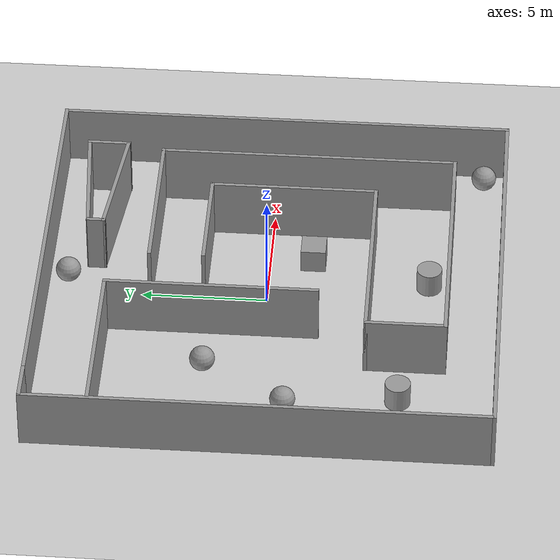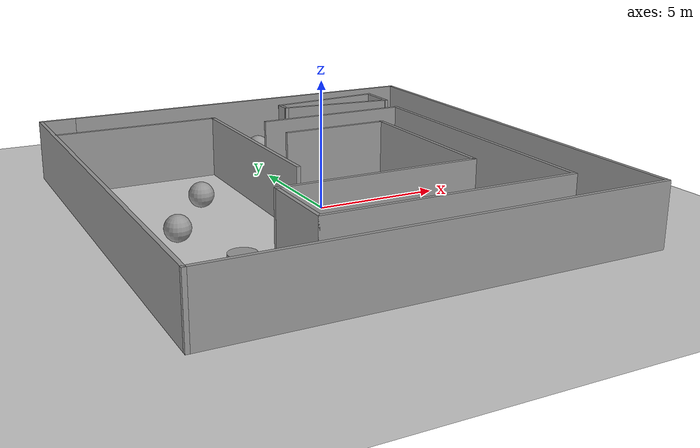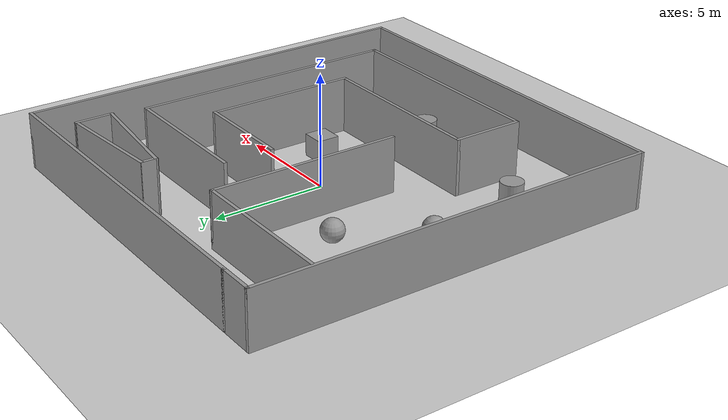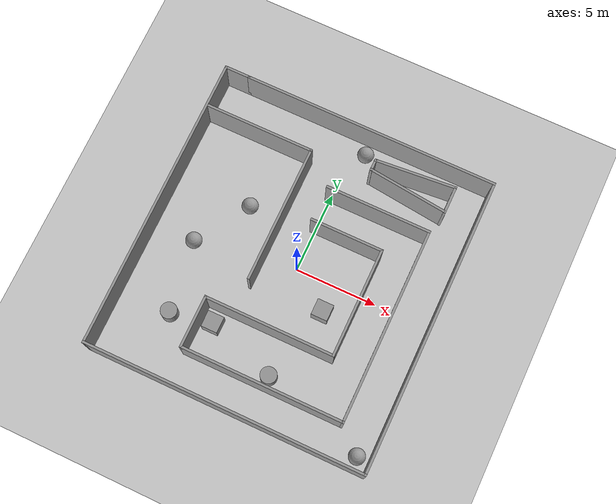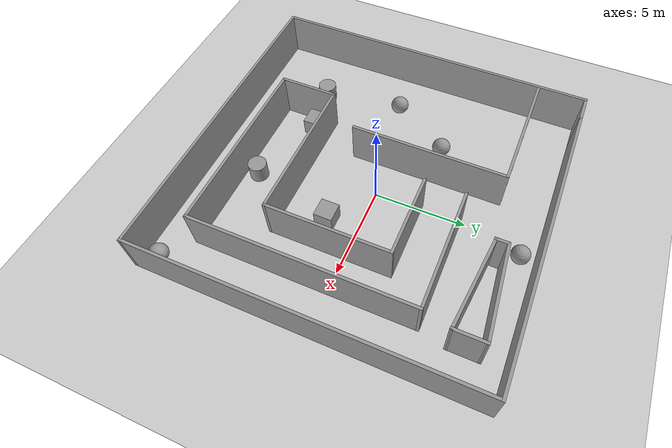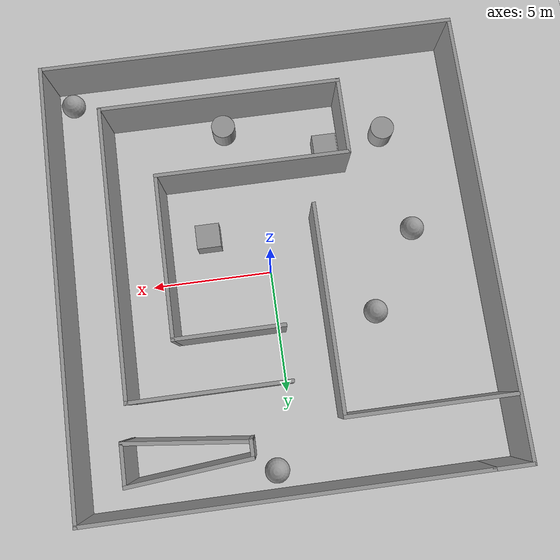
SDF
<sdf version="1.7">
 <world name="default">
  <light name="sun" type="directional">
   <pose>0 0 10 0 -0 0</pose>
   <diffuse>0.8 0.8 0.8 1</diffuse>
   <specular>0.2 0.2 0.2 1</specular>
   <attenuation>
    <range>1000</range>
    <constant>0.9</constant>
    <linear>0.01</linear>
    <quadratic>0.001</quadratic>
   </attenuation>
   <direction>-0.5 0.1 -0.9</direction>
   <spot><inner_angle>0</inner_angle><outer_angle>0</outer_angle><falloff>0</falloff></spot>
  </light>
  <model name="ground_plane">
   <static>1</static>
   <link name="link">
    <collision name="collision">
     <geometry><plane><normal>0 0 1</normal><size>100 100</size></plane></geometry>
     <surface>
      <contact><collide_bitmask>65535</collide_bitmask></contact>
      <friction><ode><mu>100</mu><mu2>50</mu2></ode></friction>
     </surface>
    </collision>
    <visual name="visual">
     <cast_shadows>0</cast_shadows>
     <geometry><plane><normal>0 0 1</normal><size>100 100</size></plane></geometry>
     <material>
      <script><uri>file://media/materials/scripts/gazebo.material</uri><name>Gazebo/Grey</name></script>
     </material>
    </visual>
   </link>
  </model>
  <gravity>0 0 -9.8</gravity>
  <magnetic_field>6e-06 2.3e-05 -4.2e-05</magnetic_field>
  <atmosphere type="adiabatic"/>
  <physics type="ode">
   <max_step_size>0.001</max_step_size>
   <real_time_factor>1</real_time_factor>
   <real_time_update_rate>1000</real_time_update_rate>
  </physics>
  <scene><ambient>0.4 0.4 0.4 1</ambient><background>0.7 0.7 0.7 1</background><shadows>1</shadows></scene>
  <audio><device>default</device></audio>
  <spherical_coordinates>
   <surface_model>EARTH_WGS84</surface_model>
   <latitude_deg>0</latitude_deg>
   <longitude_deg>0</longitude_deg>
   <elevation>0</elevation>
   <heading_deg>0</heading_deg>
  </spherical_coordinates>
  <model name="custom_world">
   <pose>-0.171794 -0.201702 0 0 -0 0</pose>
   <link name="Wall_11">
    <collision name="Wall_11_Collision">
     <geometry><box><size>6.75 0.15 2.5</size></box></geometry>
     <pose>0 0 1.25 0 -0 0</pose>
    </collision>
    <visual name="Wall_11_Visual">
     <pose>0 0 1.25 0 -0 0</pose>
     <geometry><box><size>6.75 0.15 2.5</size></box></geometry>
     <material>
      <script><uri>file://media/materials/scripts/gazebo.material</uri><name>Gazebo/Grey</name></script>
      <ambient>1 1 1 1</ambient>
     </material>
     <meta><layer>0</layer></meta>
    </visual>
    <pose>-5.1333 6.44614 0 0 -0 0</pose>
   </link>
   <link name="Wall_12">
    <collision name="Wall_12_Collision">
     <geometry><box><size>8.5 0.15 2.5</size></box></geometry>
     <pose>0 0 1.25 0 -0 0</pose>
    </collision>
    <visual name="Wall_12_Visual">
     <pose>0 0 1.25 0 -0 0</pose>
     <geometry><box><size>8.5 0.15 2.5</size></box></geometry>
     <material>
      <script><uri>file://media/materials/scripts/gazebo.material</uri><name>Gazebo/Grey</name></script>
      <ambient>1 1 1 1</ambient>
     </material>
     <meta><layer>0</layer></meta>
    </visual>
    <pose>-1.8333 2.27114 0 0 -0 -1.5708</pose>
   </link>
   <link name="Wall_14">
    <collision name="Wall_14_Collision">
     <geometry><box><size>4.5 0.15 2.5</size></box></geometry>
     <pose>0 0 1.25 0 -0 0</pose>
    </collision>
    <visual name="Wall_14_Visual">
     <pose>0 0 1.25 0 -0 0</pose>
     <geometry><box><size>4.5 0.15 2.5</size></box></geometry>
     <material>
      <script><uri>file://media/materials/scripts/gazebo.material</uri><name>Gazebo/Grey</name></script>
      <ambient>1 1 1 1</ambient>
     </material>
     <meta><layer>0</layer></meta>
    </visual>
    <pose>2.12287 2.70309 0 0 -0 0</pose>
   </link>
   <link name="Wall_15">
    <collision name="Wall_15_Collision">
     <geometry><box><size>6.75 0.15 2.5</size></box></geometry>
     <pose>0 0 1.25 0 -0 0</pose>
    </collision>
    <visual name="Wall_15_Visual">
     <pose>0 0 1.25 0 -0 0</pose>
     <geometry><box><size>6.75 0.15 2.5</size></box></geometry>
     <material>
      <script><uri>file://media/materials/scripts/gazebo.material</uri><name>Gazebo/Grey</name></script>
      <ambient>1 1 1 1</ambient>
     </material>
     <meta><layer>0</layer></meta>
    </visual>
    <pose>4.29787 -0.596908 0 0 -0 -1.5708</pose>
   </link>
   <link name="Wall_16">
    <collision name="Wall_16_Collision">
     <geometry><box><size>8 0.15 2.5</size></box></geometry>
     <pose>0 0 1.25 0 -0 0</pose>
    </collision>
    <visual name="Wall_16_Visual">
     <pose>0 0 1.25 0 -0 0</pose>
     <geometry><box><size>8 0.15 2.5</size></box></geometry>
     <material>
      <script><uri>file://media/materials/scripts/gazebo.material</uri><name>Gazebo/Grey</name></script>
      <ambient>1 1 1 1</ambient>
     </material>
     <meta><layer>0</layer></meta>
    </visual>
    <pose>0.372873 -3.89691 0 0 -0 3.14159</pose>
   </link>
   <link name="Wall_22">
    <collision name="Wall_22_Collision">
     <geometry><box><size>3.25 0.15 2.5</size></box></geometry>
     <pose>0 0 1.25 0 -0 0</pose>
    </collision>
    <visual name="Wall_22_Visual">
     <pose>0 0 1.25 0 -0 0</pose>
     <geometry><box><size>3.25 0.15 2.5</size></box></geometry>
     <material>
      <script><uri>file://media/materials/scripts/gazebo.material</uri><name>Gazebo/Grey</name></script>
      <ambient>1 1 1 1</ambient>
     </material>
     <meta><layer>0</layer></meta>
    </visual>
    <pose>-3.55213 -5.44691 0 0 -0 -1.5708</pose>
   </link>
   <link name="Wall_23">
    <collision name="Wall_23_Collision">
     <geometry><box><size>10 0.15 2.5</size></box></geometry>
     <pose>0 0 1.25 0 -0 0</pose>
    </collision>
    <visual name="Wall_23_Visual">
     <pose>0 0 1.25 0 -0 0</pose>
     <geometry><box><size>10 0.15 2.5</size></box></geometry>
     <material>
      <script><uri>file://media/materials/scripts/gazebo.material</uri><name>Gazebo/Grey</name></script>
      <ambient>1 1 1 1</ambient>
     </material>
     <meta><layer>0</layer></meta>
    </visual>
    <pose>1.37287 -6.99691 0 0 -0 0</pose>
   </link>
   <link name="Wall_24">
    <collision name="Wall_24_Collision">
     <geometry><box><size>12 0.15 2.5</size></box></geometry>
     <pose>0 0 1.25 0 -0 0</pose>
    </collision>
    <visual name="Wall_24_Visual">
     <pose>0 0 1.25 0 -0 0</pose>
     <geometry><box><size>12 0.15 2.5</size></box></geometry>
     <material>
      <script><uri>file://media/materials/scripts/gazebo.material</uri><name>Gazebo/Grey</name></script>
      <ambient>1 1 1 1</ambient>
     </material>
     <meta><layer>0</layer></meta>
    </visual>
    <pose>6.29787 -1.07191 0 0 -0 1.5708</pose>
   </link>
   <link name="Wall_25">
    <collision name="Wall_25_Collision">
     <geometry><box><size>6.5 0.15 2.5</size></box></geometry>
     <pose>0 0 1.25 0 -0 0</pose>
    </collision>
    <visual name="Wall_25_Visual">
     <pose>0 0 1.25 0 -0 0</pose>
     <geometry><box><size>6.5 0.15 2.5</size></box></geometry>
     <material>
      <script><uri>file://media/materials/scripts/gazebo.material</uri><name>Gazebo/Grey</name></script>
      <ambient>1 1 1 1</ambient>
     </material>
     <meta><layer>0</layer></meta>
    </visual>
    <pose>3.12287 4.85309 0 0 -0 3.14159</pose>
   </link>
   <link name="Wall_27">
    <collision name="Wall_27_Collision">
     <geometry><box><size>0.75 0.15 2.5</size></box></geometry>
     <pose>0 0 1.25 0 -0 0</pose>
    </collision>
    <visual name="Wall_27_Visual">
     <pose>0 0 1.25 0 -0 0</pose>
     <geometry><box><size>0.75 0.15 2.5</size></box></geometry>
     <material>
      <script><uri>file://media/materials/scripts/gazebo.material</uri><name>Gazebo/Grey</name></script>
      <ambient>1 1 1 1</ambient>
     </material>
     <meta><layer>0</layer></meta>
    </visual>
    <pose>1.7911 7.14357 0 0 -0 -1.5708</pose>
   </link>
   <link name="Wall_28">
    <collision name="Wall_28_Collision">
     <geometry><box><size>5.00908 0.15 2.5</size></box></geometry>
     <pose>0 0 1.25 0 -0 0</pose>
    </collision>
    <visual name="Wall_28_Visual">
     <pose>0 0 1.25 0 -0 0</pose>
     <geometry><box><size>5.00908 0.15 2.5</size></box></geometry>
     <material>
      <script><uri>file://media/materials/scripts/gazebo.material</uri><name>Gazebo/Grey</name></script>
      <ambient>1 1 1 1</ambient>
     </material>
     <meta><layer>0</layer></meta>
    </visual>
    <pose>4.20516 6.58502 0 0 -0 -0.112919</pose>
   </link>
   <link name="Wall_29">
    <collision name="Wall_29_Collision">
     <geometry><box><size>1.75 0.15 2.5</size></box></geometry>
     <pose>0 0 1.25 0 -0 0</pose>
    </collision>
    <visual name="Wall_29_Visual">
     <pose>0 0 1.25 0 -0 0</pose>
     <geometry><box><size>1.75 0.15 2.5</size></box></geometry>
     <material>
      <script><uri>file://media/materials/scripts/gazebo.material</uri><name>Gazebo/Grey</name></script>
      <ambient>1 1 1 1</ambient>
     </material>
     <meta><layer>0</layer></meta>
    </visual>
    <pose>6.61923 7.09606 0 0 -0 1.5708</pose>
   </link>
   <link name="Wall_30">
    <collision name="Wall_30_Collision">
     <geometry><box><size>4.98745 0.15 2.5</size></box></geometry>
     <pose>0 0 1.25 0 -0 0</pose>
    </collision>
    <visual name="Wall_30_Visual">
     <pose>0 0 1.25 0 -0 0</pose>
     <geometry><box><size>4.98745 0.15 2.5</size></box></geometry>
     <material>
      <script><uri>file://media/materials/scripts/gazebo.material</uri><name>Gazebo/Grey</name></script>
      <ambient>1 1 1 1</ambient>
     </material>
     <meta><layer>0</layer></meta>
    </visual>
    <pose>4.20944 7.68835 0 0 -0 -3.05561</pose>
   </link>
   <link name="Wall_5">
    <collision name="Wall_5_Collision">
     <geometry><box><size>15.75 0.15 2.5</size></box></geometry>
     <pose>0 0 1.25 0 -0 0</pose>
    </collision>
    <visual name="Wall_5_Visual">
     <pose>0 0 1.25 0 -0 0</pose>
     <geometry><box><size>15.75 0.15 2.5</size></box></geometry>
     <material>
      <script><uri>file://media/materials/scripts/gazebo.material</uri><name>Gazebo/Grey</name></script>
      <ambient>1 1 1 1</ambient>
     </material>
     <meta><layer>0</layer></meta>
    </visual>
    <pose>0.75 9.05 0 0 -0 0</pose>
   </link>
   <link name="Wall_6">
    <collision name="Wall_6_Collision">
     <geometry><box><size>18.25 0.15 2.5</size></box></geometry>
     <pose>0 0 1.25 0 -0 0</pose>
    </collision>
    <visual name="Wall_6_Visual">
     <pose>0 0 1.25 0 -0 0</pose>
     <geometry><box><size>18.25 0.15 2.5</size></box></geometry>
     <material>
      <script><uri>file://media/materials/scripts/gazebo.material</uri><name>Gazebo/Grey</name></script>
      <ambient>1 1 1 1</ambient>
     </material>
     <meta><layer>0</layer></meta>
    </visual>
    <pose>8.55 0 0 0 -0 -1.5708</pose>
   </link>
   <link name="Wall_7">
    <collision name="Wall_7_Collision">
     <geometry><box><size>17.25 0.15 2.5</size></box></geometry>
     <pose>0 0 1.25 0 -0 0</pose>
    </collision>
    <visual name="Wall_7_Visual">
     <pose>0 0 1.25 0 -0 0</pose>
     <geometry><box><size>17.25 0.15 2.5</size></box></geometry>
     <material>
      <script><uri>file://media/materials/scripts/gazebo.material</uri><name>Gazebo/Grey</name></script>
      <ambient>1 1 1 1</ambient>
     </material>
     <meta><layer>0</layer></meta>
    </visual>
    <pose>0 -9.05 0 0 -0 3.14159</pose>
   </link>
   <link name="Wall_8">
    <collision name="Wall_8_Collision">
     <geometry><box><size>18.25 0.15 2.5</size></box></geometry>
     <pose>0 0 1.25 0 -0 0</pose>
    </collision>
    <visual name="Wall_8_Visual">
     <pose>0 0 1.25 0 -0 0</pose>
     <geometry><box><size>18.25 0.15 2.5</size></box></geometry>
     <material>
      <script><uri>file://media/materials/scripts/gazebo.material</uri><name>Gazebo/Grey</name></script>
      <ambient>1 1 1 1</ambient>
     </material>
     <meta><layer>0</layer></meta>
    </visual>
    <pose>-8.55 0 0 0 -0 1.5708</pose>
   </link>
   <link name="Wall_9">
    <collision name="Wall_9_Collision">
     <geometry><box><size>1.65 0.15 2.5</size></box></geometry>
     <pose>0 0 1.25 0 -0 0</pose>
    </collision>
    <visual name="Wall_9_Visual">
     <pose>0 0 1.25 0 -0 0</pose>
     <geometry><box><size>1.65 0.15 2.5</size></box></geometry>
     <material>
      <script><uri>file://media/materials/scripts/gazebo.material</uri><name>Gazebo/Grey</name></script>
      <ambient>1 1 1 1</ambient>
     </material>
     <meta><layer>0</layer></meta>
    </visual>
    <pose>-7.8 9.05 0 0 -0 0</pose>
   </link>
   <static>1</static>
  </model>
  <model name="unit_box">
   <pose>2.41593 -1.71766 0.499995 -1e-05 -0 -0</pose>
   <link name="link">
    <inertial>
     <mass>1</mass>
     <inertia>
      <ixx>0.166667</ixx>
      <ixy>0</ixy>
      <ixz>0</ixz>
      <iyy>0.166667</iyy>
      <iyz>0</iyz>
      <izz>0.166667</izz>
     </inertia>
    </inertial>
    <collision name="collision"><geometry><box><size>1 1 1</size></box></geometry></collision>
    <visual name="visual">
     <geometry><box><size>1 1 1</size></box></geometry>
     <material>
      <script><name>Gazebo/Grey</name><uri>file://media/materials/scripts/gazebo.material</uri></script>
     </material>
    </visual>
   </link>
  </model>
  <model name="unit_sphere">
   <pose>-4.08313 2.25319 0.5 0 -0 0</pose>
   <link name="link">
    <inertial>
     <mass>1</mass>
     <inertia><ixx>0.1</ixx><ixy>0</ixy><ixz>0</ixz><iyy>0.1</iyy><iyz>0</iyz><izz>0.1</izz></inertia>
    </inertial>
    <collision name="collision"><geometry><sphere><radius>0.5</radius></sphere></geometry></collision>
    <visual name="visual">
     <geometry><sphere><radius>0.5</radius></sphere></geometry>
     <material>
      <script><name>Gazebo/Grey</name><uri>file://media/materials/scripts/gazebo.material</uri></script>
     </material>
    </visual>
   </link>
  </model>
  <model name="unit_sphere_0">
   <pose>-6.16026 -1.03274 0.5 0 -0 0</pose>
   <link name="link">
    <inertial>
     <mass>1</mass>
     <inertia><ixx>0.1</ixx><ixy>0</ixy><ixz>0</ixz><iyy>0.1</iyy><iyz>0</iyz><izz>0.1</izz></inertia>
    </inertial>
    <collision name="collision"><geometry><sphere><radius>0.5</radius></sphere></geometry></collision>
    <visual name="visual">
     <geometry><sphere><radius>0.5</radius></sphere></geometry>
     <material>
      <script><name>Gazebo/Grey</name><uri>file://media/materials/scripts/gazebo.material</uri></script>
     </material>
    </visual>
   </link>
  </model>
  <model name="unit_cylinder">
   <pose>-5.52787 -5.46467 0.499992 -3e-06 -4e-06 -0</pose>
   <link name="link">
    <inertial>
     <mass>1</mass>
     <inertia><ixx>0.145833</ixx><ixy>0</ixy><ixz>0</ixz><iyy>0.145833</iyy><iyz>0</iyz><izz>0.125</izz></inertia>
    </inertial>
    <collision name="collision">
     <geometry><cylinder><radius>0.5</radius><length>1</length></cylinder></geometry>
    </collision>
    <visual name="visual">
     <geometry><cylinder><radius>0.5</radius><length>1</length></cylinder></geometry>
     <material>
      <script><name>Gazebo/Grey</name><uri>file://media/materials/scripts/gazebo.material</uri></script>
     </material>
    </visual>
   </link>
  </model>
  <model name="unit_cylinder_0">
   <pose>1.2283 -6.40937 0.499993 -3e-06 -3e-06 0</pose>
   <link name="link">
    <inertial>
     <mass>1</mass>
     <inertia><ixx>0.145833</ixx><ixy>0</ixy><ixz>0</ixz><iyy>0.145833</iyy><iyz>0</iyz><izz>0.125</izz></inertia>
    </inertial>
    <collision name="collision">
     <geometry><cylinder><radius>0.5</radius><length>1</length></cylinder></geometry>
    </collision>
    <visual name="visual">
     <geometry><cylinder><radius>0.5</radius><length>1</length></cylinder></geometry>
     <material>
      <script><name>Gazebo/Grey</name><uri>file://media/materials/scripts/gazebo.material</uri></script>
     </material>
    </visual>
   </link>
  </model>
  <model name="unit_sphere_1">
   <pose>7.60399 -8.3835 0.5 0 -0 0</pose>
   <link name="link">
    <inertial>
     <mass>1</mass>
     <inertia><ixx>0.1</ixx><ixy>0</ixy><ixz>0</ixz><iyy>0.1</iyy><iyz>0</iyz><izz>0.1</izz></inertia>
    </inertial>
    <collision name="collision"><geometry><sphere><radius>0.5</radius></sphere></geometry></collision>
    <visual name="visual">
     <geometry><sphere><radius>0.5</radius></sphere></geometry>
     <material>
      <script><name>Gazebo/Grey</name><uri>file://media/materials/scripts/gazebo.material</uri></script>
     </material>
    </visual>
   </link>
  </model>
  <model name="unit_sphere_2">
   <pose>0.797308 8.0264 0.5 0 -0 0</pose>
   <link name="link">
    <inertial>
     <mass>1</mass>
     <inertia><ixx>0.1</ixx><ixy>0</ixy><ixz>0</ixz><iyy>0.1</iyy><iyz>0</iyz><izz>0.1</izz></inertia>
    </inertial>
    <collision name="collision"><geometry><sphere><radius>0.5</radius></sphere></geometry></collision>
    <visual name="visual">
     <geometry><sphere><radius>0.5</radius></sphere></geometry>
     <material>
      <script><name>Gazebo/Grey</name><uri>file://media/materials/scripts/gazebo.material</uri></script>
     </material>
    </visual>
   </link>
  </model>
  <model name="unit_box_0">
   <pose>-2.96736 -4.99159 0.5 0 -0 0</pose>
   <link name="link">
    <inertial>
     <mass>1</mass>
     <inertia>
      <ixx>0.166667</ixx>
      <ixy>0</ixy>
      <ixz>0</ixz>
      <iyy>0.166667</iyy>
      <iyz>0</iyz>
      <izz>0.166667</izz>
     </inertia>
    </inertial>
    <collision name="collision"><geometry><box><size>1 1 1</size></box></geometry></collision>
    <visual name="visual">
     <geometry><box><size>1 1 1</size></box></geometry>
     <material>
      <script><name>Gazebo/Grey</name><uri>file://media/materials/scripts/gazebo.material</uri></script>
     </material>
    </visual>
   </link>
  </model>
 </world>
</sdf>
